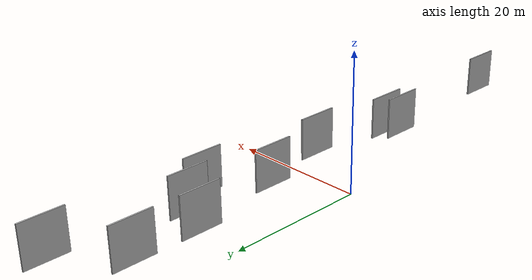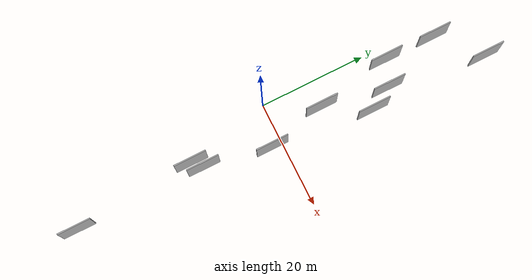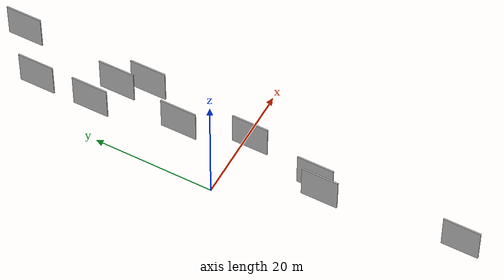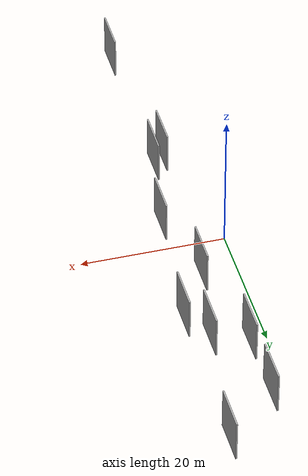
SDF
<sdf version="1.6">
 <world name="default">
  <scene>
   <sky><clouds><speed>12</speed></clouds></sky>
   <ambient>0.4 0.4 0.4 1</ambient>
   <background>0.7 0.7 0.7 1</background>
   <shadows>1</shadows>
  </scene>
  <gravity>0 0 -9.8066</gravity>
  <magnetic_field>6e-06 2.3e-05 -4.2e-05</magnetic_field>
  <physics default="0" name="default_physics" type="ode">
   <ode>
    <solver>
     <type>quick</type>
     <iters>10</iters>
     <sor>1.0</sor>
     <use_dynamic_moi_rescaling>0</use_dynamic_moi_rescaling>
    </solver>
    <constraints>
     <cfm>0</cfm>
     <erp>0.2</erp>
     <contact_max_correcting_vel>100</contact_max_correcting_vel>
     <contact_surface_layer>0.001</contact_surface_layer>
    </constraints>
   </ode>
   <max_step_size>0.004</max_step_size>
   <real_time_factor>1</real_time_factor>
   <real_time_update_rate>250</real_time_update_rate>
  </physics>
  <light name="sun" type="directional">
   <pose>0 0 10 0 0 0</pose>
   <diffuse>0.8 0.8 0.8 1</diffuse>
   <specular>0.2 0.2 0.2 1</specular>
   <attenuation>
    <range>1000</range>
    <constant>0.9</constant>
    <linear>0.01</linear>
    <quadratic>0.001</quadratic>
   </attenuation>
   <direction>-0.5 0.1 -0.9</direction>
  </light>
  <model name="grey_wall_1">
   <static>1</static>
   <pose>10.5532 38.7416 2.5 0.000000 0.000000 1.570796</pose>
   <link name="link">
    <pose>0 0 3.00 0 0 0</pose>
    <collision name="collision"><geometry><box><size>6.00 0.2 6.00</size></box></geometry></collision>
    <visual name="visual">
     <cast_shadows>0</cast_shadows>
     <geometry><box><size>6.00 0.2 6.00</size></box></geometry>
     <material>
      <script>
       <uri>model://HANNAS_wall/materials/scripts</uri>
       <uri>model://HANNAS_wall/materials/textures</uri>
       <name>vrc/HANNAS_wall</name>
      </script>
     </material>
    </visual>
   </link>
  </model>
  <model name="grey_wall_2">
   <static>1</static>
   <pose>4.4782 -15.9196 2.5 0.000000 0.000000 1.570796</pose>
   <link name="link">
    <pose>0 0 3.00 0 0 0</pose>
    <collision name="collision"><geometry><box><size>6.00 0.2 6.00</size></box></geometry></collision>
    <visual name="visual">
     <cast_shadows>0</cast_shadows>
     <geometry><box><size>6.00 0.2 6.00</size></box></geometry>
     <material>
      <script>
       <uri>model://HANNAS_wall/materials/scripts</uri>
       <uri>model://HANNAS_wall/materials/textures</uri>
       <name>vrc/HANNAS_wall</name>
      </script>
     </material>
    </visual>
   </link>
  </model>
  <model name="grey_wall_3">
   <static>1</static>
   <pose>8.3180 -2.1827 2.5 0.000000 0.000000 1.570796</pose>
   <link name="link">
    <pose>0 0 3.00 0 0 0</pose>
    <collision name="collision"><geometry><box><size>6.00 0.2 6.00</size></box></geometry></collision>
    <visual name="visual">
     <cast_shadows>0</cast_shadows>
     <geometry><box><size>6.00 0.2 6.00</size></box></geometry>
     <material>
      <script>
       <uri>model://HANNAS_wall/materials/scripts</uri>
       <uri>model://HANNAS_wall/materials/textures</uri>
       <name>vrc/HANNAS_wall</name>
      </script>
     </material>
    </visual>
   </link>
  </model>
  <model name="grey_wall_4">
   <static>1</static>
   <pose>6.1160 -14.3406 2.5 0.000000 0.000000 1.570796</pose>
   <link name="link">
    <pose>0 0 3.00 0 0 0</pose>
    <collision name="collision"><geometry><box><size>6.00 0.2 6.00</size></box></geometry></collision>
    <visual name="visual">
     <cast_shadows>0</cast_shadows>
     <geometry><box><size>6.00 0.2 6.00</size></box></geometry>
     <material>
      <script>
       <uri>model://HANNAS_wall/materials/scripts</uri>
       <uri>model://HANNAS_wall/materials/textures</uri>
       <name>vrc/HANNAS_wall</name>
      </script>
     </material>
    </visual>
   </link>
  </model>
  <model name="grey_wall_5">
   <static>1</static>
   <pose>6.1759 -38.2594 2.5 0.000000 0.000000 1.570796</pose>
   <link name="link">
    <pose>0 0 3.00 0 0 0</pose>
    <collision name="collision"><geometry><box><size>6.00 0.2 6.00</size></box></geometry></collision>
    <visual name="visual">
     <cast_shadows>0</cast_shadows>
     <geometry><box><size>6.00 0.2 6.00</size></box></geometry>
     <material>
      <script>
       <uri>model://HANNAS_wall/materials/scripts</uri>
       <uri>model://HANNAS_wall/materials/textures</uri>
       <name>vrc/HANNAS_wall</name>
      </script>
     </material>
    </visual>
   </link>
  </model>
  <model name="grey_wall_6">
   <static>1</static>
   <pose>3.2166 22.7080 2.5 0.000000 0.000000 1.570796</pose>
   <link name="link">
    <pose>0 0 3.00 0 0 0</pose>
    <collision name="collision"><geometry><box><size>6.00 0.2 6.00</size></box></geometry></collision>
    <visual name="visual">
     <cast_shadows>0</cast_shadows>
     <geometry><box><size>6.00 0.2 6.00</size></box></geometry>
     <material>
      <script>
       <uri>model://HANNAS_wall/materials/scripts</uri>
       <uri>model://HANNAS_wall/materials/textures</uri>
       <name>vrc/HANNAS_wall</name>
      </script>
     </material>
    </visual>
   </link>
  </model>
  <model name="grey_wall_7">
   <static>1</static>
   <pose>3.2611 32.2182 2.5 0.000000 0.000000 1.570796</pose>
   <link name="link">
    <pose>0 0 3.00 0 0 0</pose>
    <collision name="collision"><geometry><box><size>6.00 0.2 6.00</size></box></geometry></collision>
    <visual name="visual">
     <cast_shadows>0</cast_shadows>
     <geometry><box><size>6.00 0.2 6.00</size></box></geometry>
     <material>
      <script>
       <uri>model://HANNAS_wall/materials/scripts</uri>
       <uri>model://HANNAS_wall/materials/textures</uri>
       <name>vrc/HANNAS_wall</name>
      </script>
     </material>
    </visual>
   </link>
  </model>
  <model name="grey_wall_8">
   <static>1</static>
   <pose>5.7525 8.7228 2.5 0.000000 0.000000 1.570796</pose>
   <link name="link">
    <pose>0 0 3.00 0 0 0</pose>
    <collision name="collision"><geometry><box><size>6.00 0.2 6.00</size></box></geometry></collision>
    <visual name="visual">
     <cast_shadows>0</cast_shadows>
     <geometry><box><size>6.00 0.2 6.00</size></box></geometry>
     <material>
      <script>
       <uri>model://HANNAS_wall/materials/scripts</uri>
       <uri>model://HANNAS_wall/materials/textures</uri>
       <name>vrc/HANNAS_wall</name>
      </script>
     </material>
    </visual>
   </link>
  </model>
  <model name="grey_wall_9">
   <static>1</static>
   <pose>10.3202 16.5384 2.5 0.000000 0.000000 1.570796</pose>
   <link name="link">
    <pose>0 0 3.00 0 0 0</pose>
    <collision name="collision"><geometry><box><size>6.00 0.2 6.00</size></box></geometry></collision>
    <visual name="visual">
     <cast_shadows>0</cast_shadows>
     <geometry><box><size>6.00 0.2 6.00</size></box></geometry>
     <material>
      <script>
       <uri>model://HANNAS_wall/materials/scripts</uri>
       <uri>model://HANNAS_wall/materials/textures</uri>
       <name>vrc/HANNAS_wall</name>
      </script>
     </material>
    </visual>
   </link>
  </model>
  <model name="grey_wall_10">
   <static>1</static>
   <pose>7.9447 20.7116 2.5 0.000000 0.000000 1.570796</pose>
   <link name="link">
    <pose>0 0 3.00 0 0 0</pose>
    <collision name="collision"><geometry><box><size>6.00 0.2 6.00</size></box></geometry></collision>
    <visual name="visual">
     <cast_shadows>0</cast_shadows>
     <geometry><box><size>6.00 0.2 6.00</size></box></geometry>
     <material>
      <script>
       <uri>model://HANNAS_wall/materials/scripts</uri>
       <uri>model://HANNAS_wall/materials/textures</uri>
       <name>vrc/HANNAS_wall</name>
      </script>
     </material>
    </visual>
   </link>
  </model>
 </world>
</sdf>
